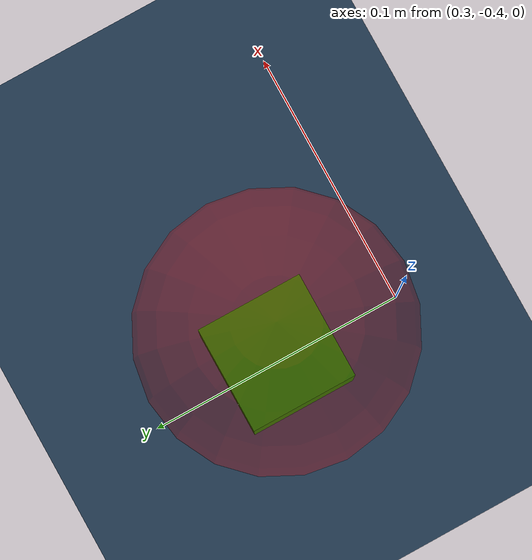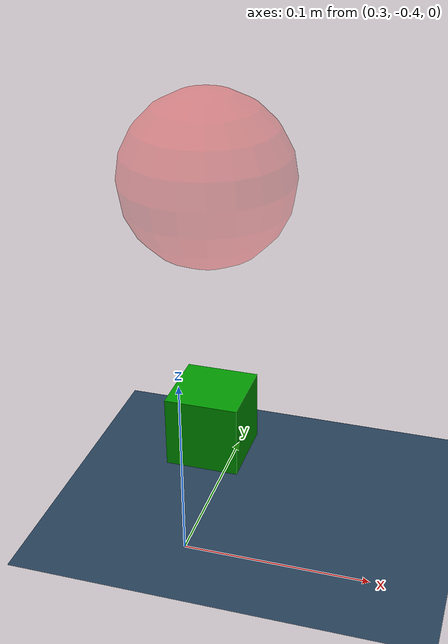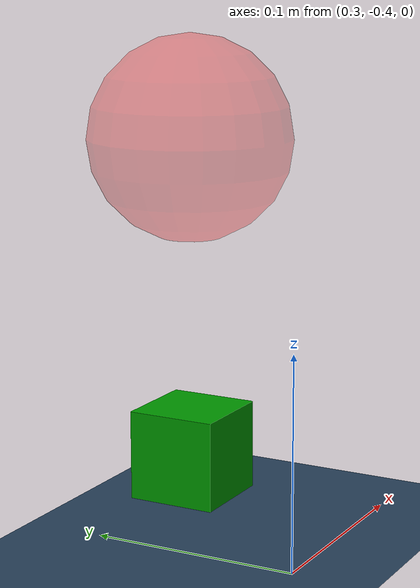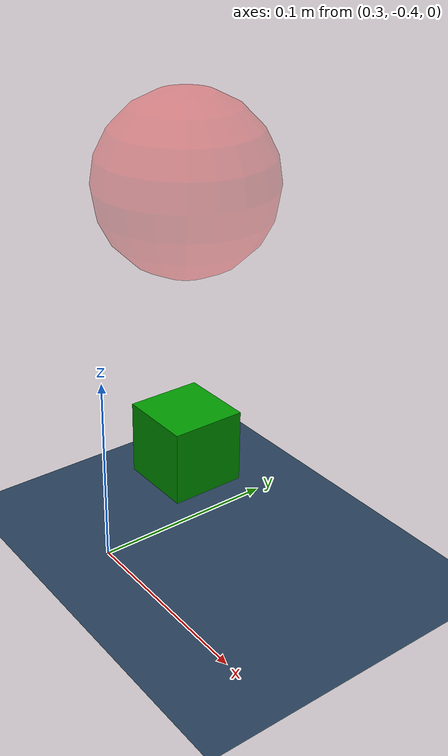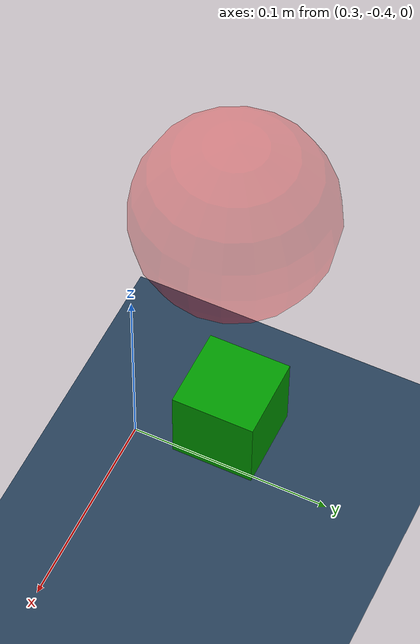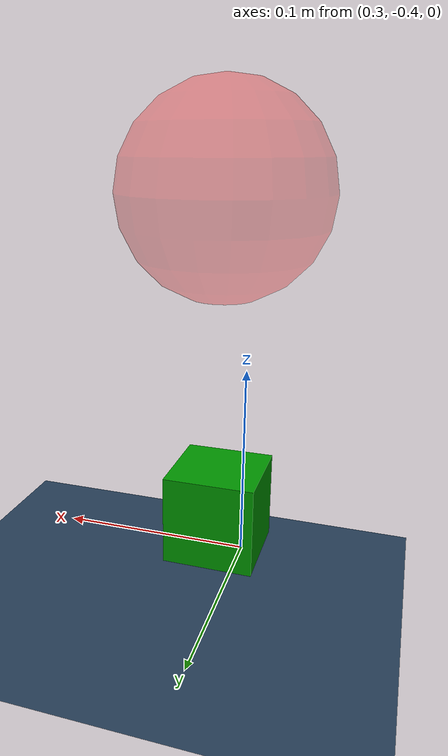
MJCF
<?xml version='1.0' encoding='utf-8'?>
<mujoco model="slope scene">
  <option cone="elliptic" impratio="200" integrator="implicitfast"/>

  <compiler angle="radian" meshdir="../" />
  <statistic center="0.3 0 0.4" extent="1" />

  <visual>
    <headlight diffuse="0.6 0.6 0.6" ambient="0.3 0.3 0.3" specular="0 0 0" />
    <rgba haze="0.15 0.25 0.35 1" />
    <global azimuth="120" elevation="-20" />
  </visual>

  <asset>
    <texture type="skybox" builtin="gradient" rgb1="0.3 0.5 0.7" rgb2="0 0 0" width="512" height="3072" />
    <texture type="2d" name="groundplane" builtin="checker" mark="edge" rgb1="0.2 0.3 0.4" rgb2="0.1 0.2 0.3" markrgb="0.8 0.8 0.8" width="300" height="300" />
    <material name="groundplane" texture="groundplane" texuniform="true" texrepeat="5 5" reflectance="0.2" />
  </asset>

  <worldbody>
    <light pos="0 0 1.5" dir="0 0 -1" directional="true" />
    <geom name="floor" size="0 0 0.05" type="plane" material="groundplane" />
  </worldbody>

  <worldbody>
    <body name="box" pos="0.3 -0.35 0.05">
      <freejoint/>
      <geom type="box" name="box" size="0.02 0.02 0.02" condim="3"
       friction="1 .03 .003" rgba="0 0.6 0 1" contype="1" conaffinity="1" solref="0.01 1" density="600"/>
    </body>

    <body name="target" pos="0.3 -0.35 0.19">
      <geom type="sphere" name="target" size="0.045" contype="0" conaffinity="0" rgba="1 0 0 0.3"/>
    </body>
  </worldbody>
</mujoco>
